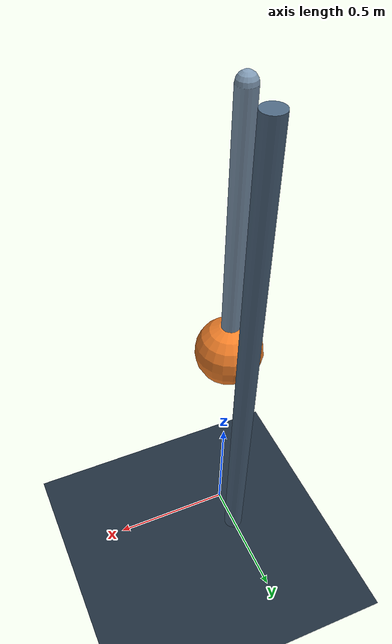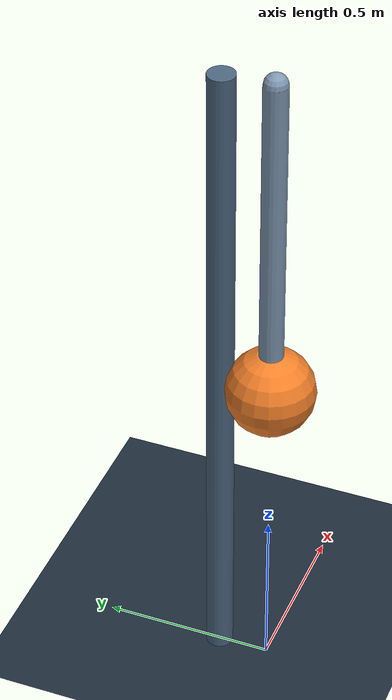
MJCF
<mujoco model="Pendulum laboratory"><option timestep=".002" gravity="0 0 -9.81"/>
<visual><global azimuth="130" elevation="-18"/><headlight ambient=".4 .4 .4" diffuse=".7 .7 .7"/></visual>
<asset><texture name="grid" type="2d" builtin="checker" width="128" height="128" rgb1=".1 .15 .2" rgb2=".14 .2 .26"/><material name="ground" texture="grid" texrepeat="4 4"/></asset>
<worldbody><light pos="0 -2 4"/><geom type="plane" size="3 3 .1" material="ground"/>
<geom type="cylinder" size=".04 1" pos="0 .15 1" rgba=".3 .4 .5 1" contype="0" conaffinity="0"/>
<body name="Pendulum" pos="0 0 2"><joint name="swing" type="hinge" axis="0 1 0" damping=".02"/>
<geom type="capsule" fromto="0 0 0 0 0 -1" size=".035" rgba=".5 .6 .7 1" mass=".1"/>
<geom type="sphere" pos="0 0 -1" size=".13" mass="1" rgba=".95 .5 .16 1"/></body></worldbody>
<keyframe><key name="Release" qpos="1.1"/></keyframe></mujoco>
